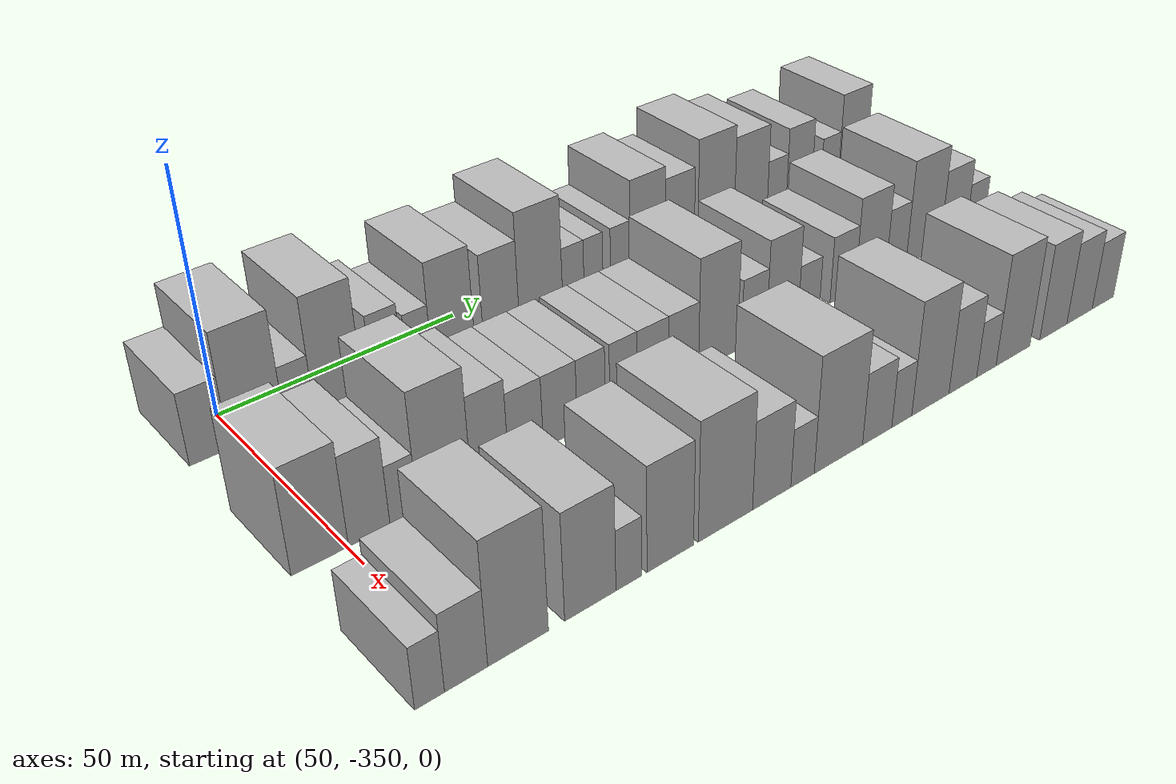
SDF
<sdf version="1.6">
 <world name="default">
  <model name="building_1">
   <static>1</static>
   <pose>50.0000 -356.3182 0 0.000000 0.000000 0.000000</pose>
   <link name="link">
    <pose>0 0 7.50 0 0 0</pose>
    <collision name="collision"><geometry><box><size>20.0000 7.3635 15.0000</size></box></geometry></collision>
    <visual name="visual">
     <cast_shadows>0</cast_shadows>
     <geometry><box><size>20.0000 7.3635 15.0000</size></box></geometry>
     <material>
      <script>
       <uri>model://HANNAS_wall/materials/scripts</uri>
       <uri>model://HANNAS_wall/materials/textures</uri>
       <name>vrc/HANNAS_wall</name>
      </script>
     </material>
    </visual>
   </link>
  </model>
  <model name="building_2">
   <static>1</static>
   <pose>50.0000 -347.3220 0 0.000000 0.000000 0.000000</pose>
   <link name="link">
    <pose>0 0 12.00 0 0 0</pose>
    <collision name="collision"><geometry><box><size>20.0000 10.6289 24.0000</size></box></geometry></collision>
    <visual name="visual">
     <cast_shadows>0</cast_shadows>
     <geometry><box><size>20.0000 10.6289 24.0000</size></box></geometry>
     <material>
      <script>
       <uri>model://HANNAS_wall/materials/scripts</uri>
       <uri>model://HANNAS_wall/materials/textures</uri>
       <name>vrc/HANNAS_wall</name>
      </script>
     </material>
    </visual>
   </link>
  </model>
  <model name="building_3">
   <static>1</static>
   <pose>50.0000 -339.0892 0 0.000000 0.000000 0.000000</pose>
   <link name="link">
    <pose>0 0 6.00 0 0 0</pose>
    <collision name="collision"><geometry><box><size>20.0000 5.8367 12.0000</size></box></geometry></collision>
    <visual name="visual">
     <cast_shadows>0</cast_shadows>
     <geometry><box><size>20.0000 5.8367 12.0000</size></box></geometry>
     <material>
      <script>
       <uri>model://HANNAS_wall/materials/scripts</uri>
       <uri>model://HANNAS_wall/materials/textures</uri>
       <name>vrc/HANNAS_wall</name>
      </script>
     </material>
    </visual>
   </link>
  </model>
  <model name="building_4">
   <static>1</static>
   <pose>50.0000 -331.2127 0 0.000000 0.000000 0.000000</pose>
   <link name="link">
    <pose>0 0 12.00 0 0 0</pose>
    <collision name="collision"><geometry><box><size>20.0000 9.9163 24.0000</size></box></geometry></collision>
    <visual name="visual">
     <cast_shadows>0</cast_shadows>
     <geometry><box><size>20.0000 9.9163 24.0000</size></box></geometry>
     <material>
      <script>
       <uri>model://HANNAS_wall/materials/scripts</uri>
       <uri>model://HANNAS_wall/materials/textures</uri>
       <name>vrc/HANNAS_wall</name>
      </script>
     </material>
    </visual>
   </link>
  </model>
  <model name="building_5">
   <static>1</static>
   <pose>50.0000 -320.9949 0 0.000000 0.000000 0.000000</pose>
   <link name="link">
    <pose>0 0 7.50 0 0 0</pose>
    <collision name="collision"><geometry><box><size>20.0000 6.5192 15.0000</size></box></geometry></collision>
    <visual name="visual">
     <cast_shadows>0</cast_shadows>
     <geometry><box><size>20.0000 6.5192 15.0000</size></box></geometry>
     <material>
      <script>
       <uri>model://HANNAS_wall/materials/scripts</uri>
       <uri>model://HANNAS_wall/materials/textures</uri>
       <name>vrc/HANNAS_wall</name>
      </script>
     </material>
    </visual>
   </link>
  </model>
  <model name="building_6">
   <static>1</static>
   <pose>50.0000 -314.0571 0 0.000000 0.000000 0.000000</pose>
   <link name="link">
    <pose>0 0 6.00 0 0 0</pose>
    <collision name="collision"><geometry><box><size>20.0000 5.3563 12.0000</size></box></geometry></collision>
    <visual name="visual">
     <cast_shadows>0</cast_shadows>
     <geometry><box><size>20.0000 5.3563 12.0000</size></box></geometry>
     <material>
      <script>
       <uri>model://HANNAS_wall/materials/scripts</uri>
       <uri>model://HANNAS_wall/materials/textures</uri>
       <name>vrc/HANNAS_wall</name>
      </script>
     </material>
    </visual>
   </link>
  </model>
  <model name="building_7">
   <static>1</static>
   <pose>50.0000 -306.5330 0 0.000000 0.000000 0.000000</pose>
   <link name="link">
    <pose>0 0 10.50 0 0 0</pose>
    <collision name="collision"><geometry><box><size>20.0000 9.6920 21.0000</size></box></geometry></collision>
    <visual name="visual">
     <cast_shadows>0</cast_shadows>
     <geometry><box><size>20.0000 9.6920 21.0000</size></box></geometry>
     <material>
      <script>
       <uri>model://HANNAS_wall/materials/scripts</uri>
       <uri>model://HANNAS_wall/materials/textures</uri>
       <name>vrc/HANNAS_wall</name>
      </script>
     </material>
    </visual>
   </link>
  </model>
  <model name="building_8">
   <static>1</static>
   <pose>50.0000 -295.4323 0 0.000000 0.000000 0.000000</pose>
   <link name="link">
    <pose>0 0 9.00 0 0 0</pose>
    <collision name="collision"><geometry><box><size>20.0000 8.5095 18.0000</size></box></geometry></collision>
    <visual name="visual">
     <cast_shadows>0</cast_shadows>
     <geometry><box><size>20.0000 8.5095 18.0000</size></box></geometry>
     <material>
      <script>
       <uri>model://HANNAS_wall/materials/scripts</uri>
       <uri>model://HANNAS_wall/materials/textures</uri>
       <name>vrc/HANNAS_wall</name>
      </script>
     </material>
    </visual>
   </link>
  </model>
  <model name="building_9">
   <static>1</static>
   <pose>50.0000 -285.8523 0 0.000000 0.000000 0.000000</pose>
   <link name="link">
    <pose>0 0 12.00 0 0 0</pose>
    <collision name="collision"><geometry><box><size>20.0000 10.6504 24.0000</size></box></geometry></collision>
    <visual name="visual">
     <cast_shadows>0</cast_shadows>
     <geometry><box><size>20.0000 10.6504 24.0000</size></box></geometry>
     <material>
      <script>
       <uri>model://HANNAS_wall/materials/scripts</uri>
       <uri>model://HANNAS_wall/materials/textures</uri>
       <name>vrc/HANNAS_wall</name>
      </script>
     </material>
    </visual>
   </link>
  </model>
  <model name="building_10">
   <static>1</static>
   <pose>50.0000 -277.8127 0 0.000000 0.000000 0.000000</pose>
   <link name="link">
    <pose>0 0 6.00 0 0 0</pose>
    <collision name="collision"><geometry><box><size>20.0000 5.4288 12.0000</size></box></geometry></collision>
    <visual name="visual">
     <cast_shadows>0</cast_shadows>
     <geometry><box><size>20.0000 5.4288 12.0000</size></box></geometry>
     <material>
      <script>
       <uri>model://HANNAS_wall/materials/scripts</uri>
       <uri>model://HANNAS_wall/materials/textures</uri>
       <name>vrc/HANNAS_wall</name>
      </script>
     </material>
    </visual>
   </link>
  </model>
  <model name="building_11">
   <static>1</static>
   <pose>50.0000 -272.6775 0 0.000000 0.000000 0.000000</pose>
   <link name="link">
    <pose>0 0 6.00 0 0 0</pose>
    <collision name="collision"><geometry><box><size>20.0000 4.8417 12.0000</size></box></geometry></collision>
    <visual name="visual">
     <cast_shadows>0</cast_shadows>
     <geometry><box><size>20.0000 4.8417 12.0000</size></box></geometry>
     <material>
      <script>
       <uri>model://HANNAS_wall/materials/scripts</uri>
       <uri>model://HANNAS_wall/materials/textures</uri>
       <name>vrc/HANNAS_wall</name>
      </script>
     </material>
    </visual>
   </link>
  </model>
  <model name="building_12">
   <static>1</static>
   <pose>50.0000 -265.6677 0 0.000000 0.000000 0.000000</pose>
   <link name="link">
    <pose>0 0 6.00 0 0 0</pose>
    <collision name="collision"><geometry><box><size>20.0000 5.1778 12.0000</size></box></geometry></collision>
    <visual name="visual">
     <cast_shadows>0</cast_shadows>
     <geometry><box><size>20.0000 5.1778 12.0000</size></box></geometry>
     <material>
      <script>
       <uri>model://HANNAS_wall/materials/scripts</uri>
       <uri>model://HANNAS_wall/materials/textures</uri>
       <name>vrc/HANNAS_wall</name>
      </script>
     </material>
    </visual>
   </link>
  </model>
  <model name="building_13">
   <static>1</static>
   <pose>50.0000 -258.3570 0 0.000000 0.000000 0.000000</pose>
   <link name="link">
    <pose>0 0 10.50 0 0 0</pose>
    <collision name="collision"><geometry><box><size>20.0000 9.4436 21.0000</size></box></geometry></collision>
    <visual name="visual">
     <cast_shadows>0</cast_shadows>
     <geometry><box><size>20.0000 9.4436 21.0000</size></box></geometry>
     <material>
      <script>
       <uri>model://HANNAS_wall/materials/scripts</uri>
       <uri>model://HANNAS_wall/materials/textures</uri>
       <name>vrc/HANNAS_wall</name>
      </script>
     </material>
    </visual>
   </link>
  </model>
  <model name="building_14">
   <static>1</static>
   <pose>50.0000 -249.5929 0 0.000000 0.000000 0.000000</pose>
   <link name="link">
    <pose>0 0 9.00 0 0 0</pose>
    <collision name="collision"><geometry><box><size>20.0000 8.0846 18.0000</size></box></geometry></collision>
    <visual name="visual">
     <cast_shadows>0</cast_shadows>
     <geometry><box><size>20.0000 8.0846 18.0000</size></box></geometry>
     <material>
      <script>
       <uri>model://HANNAS_wall/materials/scripts</uri>
       <uri>model://HANNAS_wall/materials/textures</uri>
       <name>vrc/HANNAS_wall</name>
      </script>
     </material>
    </visual>
   </link>
  </model>
  <model name="building_15">
   <static>1</static>
   <pose>50.0000 -239.2889 0 0.000000 0.000000 0.000000</pose>
   <link name="link">
    <pose>0 0 12.00 0 0 0</pose>
    <collision name="collision"><geometry><box><size>20.0000 10.5233 24.0000</size></box></geometry></collision>
    <visual name="visual">
     <cast_shadows>0</cast_shadows>
     <geometry><box><size>20.0000 10.5233 24.0000</size></box></geometry>
     <material>
      <script>
       <uri>model://HANNAS_wall/materials/scripts</uri>
       <uri>model://HANNAS_wall/materials/textures</uri>
       <name>vrc/HANNAS_wall</name>
      </script>
     </material>
    </visual>
   </link>
  </model>
  <model name="building_16">
   <static>1</static>
   <pose>50.0000 -229.0714 0 0.000000 0.000000 0.000000</pose>
   <link name="link">
    <pose>0 0 10.50 0 0 0</pose>
    <collision name="collision"><geometry><box><size>20.0000 9.9116 21.0000</size></box></geometry></collision>
    <visual name="visual">
     <cast_shadows>0</cast_shadows>
     <geometry><box><size>20.0000 9.9116 21.0000</size></box></geometry>
     <material>
      <script>
       <uri>model://HANNAS_wall/materials/scripts</uri>
       <uri>model://HANNAS_wall/materials/textures</uri>
       <name>vrc/HANNAS_wall</name>
      </script>
     </material>
    </visual>
   </link>
  </model>
  <model name="building_17">
   <static>1</static>
   <pose>50.0000 -221.1700 0 0.000000 0.000000 0.000000</pose>
   <link name="link">
    <pose>0 0 6.00 0 0 0</pose>
    <collision name="collision"><geometry><box><size>20.0000 5.8912 12.0000</size></box></geometry></collision>
    <visual name="visual">
     <cast_shadows>0</cast_shadows>
     <geometry><box><size>20.0000 5.8912 12.0000</size></box></geometry>
     <material>
      <script>
       <uri>model://HANNAS_wall/materials/scripts</uri>
       <uri>model://HANNAS_wall/materials/textures</uri>
       <name>vrc/HANNAS_wall</name>
      </script>
     </material>
    </visual>
   </link>
  </model>
  <model name="building_18">
   <static>1</static>
   <pose>50.0000 -214.2446 0 0.000000 0.000000 0.000000</pose>
   <link name="link">
    <pose>0 0 9.00 0 0 0</pose>
    <collision name="collision"><geometry><box><size>20.0000 7.9594 18.0000</size></box></geometry></collision>
    <visual name="visual">
     <cast_shadows>0</cast_shadows>
     <geometry><box><size>20.0000 7.9594 18.0000</size></box></geometry>
     <material>
      <script>
       <uri>model://HANNAS_wall/materials/scripts</uri>
       <uri>model://HANNAS_wall/materials/textures</uri>
       <name>vrc/HANNAS_wall</name>
      </script>
     </material>
    </visual>
   </link>
  </model>
  <model name="building_19">
   <static>1</static>
   <pose>50.0000 -204.4203 0 0.000000 0.000000 0.000000</pose>
   <link name="link">
    <pose>0 0 6.00 0 0 0</pose>
    <collision name="collision"><geometry><box><size>20.0000 5.6892 12.0000</size></box></geometry></collision>
    <visual name="visual">
     <cast_shadows>0</cast_shadows>
     <geometry><box><size>20.0000 5.6892 12.0000</size></box></geometry>
     <material>
      <script>
       <uri>model://HANNAS_wall/materials/scripts</uri>
       <uri>model://HANNAS_wall/materials/textures</uri>
       <name>vrc/HANNAS_wall</name>
      </script>
     </material>
    </visual>
   </link>
  </model>
  <model name="building_20">
   <static>1</static>
   <pose>50.0000 -196.9726 0 0.000000 0.000000 0.000000</pose>
   <link name="link">
    <pose>0 0 10.50 0 0 0</pose>
    <collision name="collision"><geometry><box><size>20.0000 9.2061 21.0000</size></box></geometry></collision>
    <visual name="visual">
     <cast_shadows>0</cast_shadows>
     <geometry><box><size>20.0000 9.2061 21.0000</size></box></geometry>
     <material>
      <script>
       <uri>model://HANNAS_wall/materials/scripts</uri>
       <uri>model://HANNAS_wall/materials/textures</uri>
       <name>vrc/HANNAS_wall</name>
      </script>
     </material>
    </visual>
   </link>
  </model>
  <model name="building_81">
   <static>1</static>
   <pose>85.0000 -354.9230 0 0.000000 0.000000 0.000000</pose>
   <link name="link">
    <pose>0 0 10.50 0 0 0</pose>
    <collision name="collision"><geometry><box><size>20.0000 10.1540 21.0000</size></box></geometry></collision>
    <visual name="visual">
     <cast_shadows>0</cast_shadows>
     <geometry><box><size>20.0000 10.1540 21.0000</size></box></geometry>
     <material>
      <script>
       <uri>model://HANNAS_wall/materials/scripts</uri>
       <uri>model://HANNAS_wall/materials/textures</uri>
       <name>vrc/HANNAS_wall</name>
      </script>
     </material>
    </visual>
   </link>
  </model>
  <model name="building_82">
   <static>1</static>
   <pose>85.0000 -346.0212 0 0.000000 0.000000 0.000000</pose>
   <link name="link">
    <pose>0 0 9.00 0 0 0</pose>
    <collision name="collision"><geometry><box><size>20.0000 7.6495 18.0000</size></box></geometry></collision>
    <visual name="visual">
     <cast_shadows>0</cast_shadows>
     <geometry><box><size>20.0000 7.6495 18.0000</size></box></geometry>
     <material>
      <script>
       <uri>model://HANNAS_wall/materials/scripts</uri>
       <uri>model://HANNAS_wall/materials/textures</uri>
       <name>vrc/HANNAS_wall</name>
      </script>
     </material>
    </visual>
   </link>
  </model>
  <model name="building_83">
   <static>1</static>
   <pose>85.0000 -339.5776 0 0.000000 0.000000 0.000000</pose>
   <link name="link">
    <pose>0 0 6.00 0 0 0</pose>
    <collision name="collision"><geometry><box><size>20.0000 5.2378 12.0000</size></box></geometry></collision>
    <visual name="visual">
     <cast_shadows>0</cast_shadows>
     <geometry><box><size>20.0000 5.2378 12.0000</size></box></geometry>
     <material>
      <script>
       <uri>model://HANNAS_wall/materials/scripts</uri>
       <uri>model://HANNAS_wall/materials/textures</uri>
       <name>vrc/HANNAS_wall</name>
      </script>
     </material>
    </visual>
   </link>
  </model>
  <model name="building_84">
   <static>1</static>
   <pose>85.0000 -331.7009 0 0.000000 0.000000 0.000000</pose>
   <link name="link">
    <pose>0 0 12.00 0 0 0</pose>
    <collision name="collision"><geometry><box><size>20.0000 10.5156 24.0000</size></box></geometry></collision>
    <visual name="visual">
     <cast_shadows>0</cast_shadows>
     <geometry><box><size>20.0000 10.5156 24.0000</size></box></geometry>
     <material>
      <script>
       <uri>model://HANNAS_wall/materials/scripts</uri>
       <uri>model://HANNAS_wall/materials/textures</uri>
       <name>vrc/HANNAS_wall</name>
      </script>
     </material>
    </visual>
   </link>
  </model>
  <model name="building_85">
   <static>1</static>
   <pose>85.0000 -322.6389 0 0.000000 0.000000 0.000000</pose>
   <link name="link">
    <pose>0 0 9.00 0 0 0</pose>
    <collision name="collision"><geometry><box><size>20.0000 7.6083 18.0000</size></box></geometry></collision>
    <visual name="visual">
     <cast_shadows>0</cast_shadows>
     <geometry><box><size>20.0000 7.6083 18.0000</size></box></geometry>
     <material>
      <script>
       <uri>model://HANNAS_wall/materials/scripts</uri>
       <uri>model://HANNAS_wall/materials/textures</uri>
       <name>vrc/HANNAS_wall</name>
      </script>
     </material>
    </visual>
   </link>
  </model>
  <model name="building_86">
   <static>1</static>
   <pose>85.0000 -315.1544 0 0.000000 0.000000 0.000000</pose>
   <link name="link">
    <pose>0 0 7.50 0 0 0</pose>
    <collision name="collision"><geometry><box><size>20.0000 7.3609 15.0000</size></box></geometry></collision>
    <visual name="visual">
     <cast_shadows>0</cast_shadows>
     <geometry><box><size>20.0000 7.3609 15.0000</size></box></geometry>
     <material>
      <script>
       <uri>model://HANNAS_wall/materials/scripts</uri>
       <uri>model://HANNAS_wall/materials/textures</uri>
       <name>vrc/HANNAS_wall</name>
      </script>
     </material>
    </visual>
   </link>
  </model>
  <model name="building_87">
   <static>1</static>
   <pose>85.0000 -307.7761 0 0.000000 0.000000 0.000000</pose>
   <link name="link">
    <pose>0 0 7.50 0 0 0</pose>
    <collision name="collision"><geometry><box><size>20.0000 7.3957 15.0000</size></box></geometry></collision>
    <visual name="visual">
     <cast_shadows>0</cast_shadows>
     <geometry><box><size>20.0000 7.3957 15.0000</size></box></geometry>
     <material>
      <script>
       <uri>model://HANNAS_wall/materials/scripts</uri>
       <uri>model://HANNAS_wall/materials/textures</uri>
       <name>vrc/HANNAS_wall</name>
      </script>
     </material>
    </visual>
   </link>
  </model>
  <model name="building_88">
   <static>1</static>
   <pose>85.0000 -300.9057 0 0.000000 0.000000 0.000000</pose>
   <link name="link">
    <pose>0 0 7.50 0 0 0</pose>
    <collision name="collision"><geometry><box><size>20.0000 6.3449 15.0000</size></box></geometry></collision>
    <visual name="visual">
     <cast_shadows>0</cast_shadows>
     <geometry><box><size>20.0000 6.3449 15.0000</size></box></geometry>
     <material>
      <script>
       <uri>model://HANNAS_wall/materials/scripts</uri>
       <uri>model://HANNAS_wall/materials/textures</uri>
       <name>vrc/HANNAS_wall</name>
      </script>
     </material>
    </visual>
   </link>
  </model>
  <model name="building_89">
   <static>1</static>
   <pose>85.0000 -293.5814 0 0.000000 0.000000 0.000000</pose>
   <link name="link">
    <pose>0 0 7.50 0 0 0</pose>
    <collision name="collision"><geometry><box><size>20.0000 6.3038 15.0000</size></box></geometry></collision>
    <visual name="visual">
     <cast_shadows>0</cast_shadows>
     <geometry><box><size>20.0000 6.3038 15.0000</size></box></geometry>
     <material>
      <script>
       <uri>model://HANNAS_wall/materials/scripts</uri>
       <uri>model://HANNAS_wall/materials/textures</uri>
       <name>vrc/HANNAS_wall</name>
      </script>
     </material>
    </visual>
   </link>
  </model>
  <model name="building_90">
   <static>1</static>
   <pose>85.0000 -286.7351 0 0.000000 0.000000 0.000000</pose>
   <link name="link">
    <pose>0 0 7.50 0 0 0</pose>
    <collision name="collision"><geometry><box><size>20.0000 7.3887 15.0000</size></box></geometry></collision>
    <visual name="visual">
     <cast_shadows>0</cast_shadows>
     <geometry><box><size>20.0000 7.3887 15.0000</size></box></geometry>
     <material>
      <script>
       <uri>model://HANNAS_wall/materials/scripts</uri>
       <uri>model://HANNAS_wall/materials/textures</uri>
       <name>vrc/HANNAS_wall</name>
      </script>
     </material>
    </visual>
   </link>
  </model>
  <model name="building_91">
   <static>1</static>
   <pose>85.0000 -279.3662 0 0.000000 0.000000 0.000000</pose>
   <link name="link">
    <pose>0 0 7.50 0 0 0</pose>
    <collision name="collision"><geometry><box><size>20.0000 7.3492 15.0000</size></box></geometry></collision>
    <visual name="visual">
     <cast_shadows>0</cast_shadows>
     <geometry><box><size>20.0000 7.3492 15.0000</size></box></geometry>
     <material>
      <script>
       <uri>model://HANNAS_wall/materials/scripts</uri>
       <uri>model://HANNAS_wall/materials/textures</uri>
       <name>vrc/HANNAS_wall</name>
      </script>
     </material>
    </visual>
   </link>
  </model>
  <model name="building_92">
   <static>1</static>
   <pose>85.0000 -270.7363 0 0.000000 0.000000 0.000000</pose>
   <link name="link">
    <pose>0 0 12.00 0 0 0</pose>
    <collision name="collision"><geometry><box><size>20.0000 9.9105 24.0000</size></box></geometry></collision>
    <visual name="visual">
     <cast_shadows>0</cast_shadows>
     <geometry><box><size>20.0000 9.9105 24.0000</size></box></geometry>
     <material>
      <script>
       <uri>model://HANNAS_wall/materials/scripts</uri>
       <uri>model://HANNAS_wall/materials/textures</uri>
       <name>vrc/HANNAS_wall</name>
      </script>
     </material>
    </visual>
   </link>
  </model>
  <model name="building_93">
   <static>1</static>
   <pose>85.0000 -261.4802 0 0.000000 0.000000 0.000000</pose>
   <link name="link">
    <pose>0 0 7.50 0 0 0</pose>
    <collision name="collision"><geometry><box><size>20.0000 6.6018 15.0000</size></box></geometry></collision>
    <visual name="visual">
     <cast_shadows>0</cast_shadows>
     <geometry><box><size>20.0000 6.6018 15.0000</size></box></geometry>
     <material>
      <script>
       <uri>model://HANNAS_wall/materials/scripts</uri>
       <uri>model://HANNAS_wall/materials/textures</uri>
       <name>vrc/HANNAS_wall</name>
      </script>
     </material>
    </visual>
   </link>
  </model>
  <model name="building_94">
   <static>1</static>
   <pose>85.0000 -253.8972 0 0.000000 0.000000 0.000000</pose>
   <link name="link">
    <pose>0 0 10.50 0 0 0</pose>
    <collision name="collision"><geometry><box><size>20.0000 8.5642 21.0000</size></box></geometry></collision>
    <visual name="visual">
     <cast_shadows>0</cast_shadows>
     <geometry><box><size>20.0000 8.5642 21.0000</size></box></geometry>
     <material>
      <script>
       <uri>model://HANNAS_wall/materials/scripts</uri>
       <uri>model://HANNAS_wall/materials/textures</uri>
       <name>vrc/HANNAS_wall</name>
      </script>
     </material>
    </visual>
   </link>
  </model>
  <model name="building_95">
   <static>1</static>
   <pose>85.0000 -246.6597 0 0.000000 0.000000 0.000000</pose>
   <link name="link">
    <pose>0 0 6.00 0 0 0</pose>
    <collision name="collision"><geometry><box><size>20.0000 5.9108 12.0000</size></box></geometry></collision>
    <visual name="visual">
     <cast_shadows>0</cast_shadows>
     <geometry><box><size>20.0000 5.9108 12.0000</size></box></geometry>
     <material>
      <script>
       <uri>model://HANNAS_wall/materials/scripts</uri>
       <uri>model://HANNAS_wall/materials/textures</uri>
       <name>vrc/HANNAS_wall</name>
      </script>
     </material>
    </visual>
   </link>
  </model>
  <model name="building_96">
   <static>1</static>
   <pose>85.0000 -237.0881 0 0.000000 0.000000 0.000000</pose>
   <link name="link">
    <pose>0 0 7.50 0 0 0</pose>
    <collision name="collision"><geometry><box><size>20.0000 7.2323 15.0000</size></box></geometry></collision>
    <visual name="visual">
     <cast_shadows>0</cast_shadows>
     <geometry><box><size>20.0000 7.2323 15.0000</size></box></geometry>
     <material>
      <script>
       <uri>model://HANNAS_wall/materials/scripts</uri>
       <uri>model://HANNAS_wall/materials/textures</uri>
       <name>vrc/HANNAS_wall</name>
      </script>
     </material>
    </visual>
   </link>
  </model>
  <model name="building_97">
   <static>1</static>
   <pose>85.0000 -228.9079 0 0.000000 0.000000 0.000000</pose>
   <link name="link">
    <pose>0 0 10.50 0 0 0</pose>
    <collision name="collision"><geometry><box><size>20.0000 9.1282 21.0000</size></box></geometry></collision>
    <visual name="visual">
     <cast_shadows>0</cast_shadows>
     <geometry><box><size>20.0000 9.1282 21.0000</size></box></geometry>
     <material>
      <script>
       <uri>model://HANNAS_wall/materials/scripts</uri>
       <uri>model://HANNAS_wall/materials/textures</uri>
       <name>vrc/HANNAS_wall</name>
      </script>
     </material>
    </visual>
   </link>
  </model>
  <model name="building_98">
   <static>1</static>
   <pose>85.0000 -221.2618 0 0.000000 0.000000 0.000000</pose>
   <link name="link">
    <pose>0 0 7.50 0 0 0</pose>
    <collision name="collision"><geometry><box><size>20.0000 6.1638 15.0000</size></box></geometry></collision>
    <visual name="visual">
     <cast_shadows>0</cast_shadows>
     <geometry><box><size>20.0000 6.1638 15.0000</size></box></geometry>
     <material>
      <script>
       <uri>model://HANNAS_wall/materials/scripts</uri>
       <uri>model://HANNAS_wall/materials/textures</uri>
       <name>vrc/HANNAS_wall</name>
      </script>
     </material>
    </visual>
   </link>
  </model>
  <model name="building_99">
   <static>1</static>
   <pose>85.0000 -212.8342 0 0.000000 0.000000 0.000000</pose>
   <link name="link">
    <pose>0 0 12.00 0 0 0</pose>
    <collision name="collision"><geometry><box><size>20.0000 10.6914 24.0000</size></box></geometry></collision>
    <visual name="visual">
     <cast_shadows>0</cast_shadows>
     <geometry><box><size>20.0000 10.6914 24.0000</size></box></geometry>
     <material>
      <script>
       <uri>model://HANNAS_wall/materials/scripts</uri>
       <uri>model://HANNAS_wall/materials/textures</uri>
       <name>vrc/HANNAS_wall</name>
      </script>
     </material>
    </visual>
   </link>
  </model>
  <model name="building_100">
   <static>1</static>
   <pose>85.0000 -203.2504 0 0.000000 0.000000 0.000000</pose>
   <link name="link">
    <pose>0 0 9.00 0 0 0</pose>
    <collision name="collision"><geometry><box><size>20.0000 8.4762 18.0000</size></box></geometry></collision>
    <visual name="visual">
     <cast_shadows>0</cast_shadows>
     <geometry><box><size>20.0000 8.4762 18.0000</size></box></geometry>
     <material>
      <script>
       <uri>model://HANNAS_wall/materials/scripts</uri>
       <uri>model://HANNAS_wall/materials/textures</uri>
       <name>vrc/HANNAS_wall</name>
      </script>
     </material>
    </visual>
   </link>
  </model>
  <model name="building_101">
   <static>1</static>
   <pose>85.0000 -196.0140 0 0.000000 0.000000 0.000000</pose>
   <link name="link">
    <pose>0 0 6.00 0 0 0</pose>
    <collision name="collision"><geometry><box><size>20.0000 5.9967 12.0000</size></box></geometry></collision>
    <visual name="visual">
     <cast_shadows>0</cast_shadows>
     <geometry><box><size>20.0000 5.9967 12.0000</size></box></geometry>
     <material>
      <script>
       <uri>model://HANNAS_wall/materials/scripts</uri>
       <uri>model://HANNAS_wall/materials/textures</uri>
       <name>vrc/HANNAS_wall</name>
      </script>
     </material>
    </visual>
   </link>
  </model>
  <model name="building_162">
   <static>1</static>
   <pose>120.0000 -357.5133 0 0.000000 0.000000 0.000000</pose>
   <link name="link">
    <pose>0 0 6.00 0 0 0</pose>
    <collision name="collision"><geometry><box><size>20.0000 4.9734 12.0000</size></box></geometry></collision>
    <visual name="visual">
     <cast_shadows>0</cast_shadows>
     <geometry><box><size>20.0000 4.9734 12.0000</size></box></geometry>
     <material>
      <script>
       <uri>model://HANNAS_wall/materials/scripts</uri>
       <uri>model://HANNAS_wall/materials/textures</uri>
       <name>vrc/HANNAS_wall</name>
      </script>
     </material>
    </visual>
   </link>
  </model>
  <model name="building_163">
   <static>1</static>
   <pose>120.0000 -351.3323 0 0.000000 0.000000 0.000000</pose>
   <link name="link">
    <pose>0 0 7.50 0 0 0</pose>
    <collision name="collision"><geometry><box><size>20.0000 7.3888 15.0000</size></box></geometry></collision>
    <visual name="visual">
     <cast_shadows>0</cast_shadows>
     <geometry><box><size>20.0000 7.3888 15.0000</size></box></geometry>
     <material>
      <script>
       <uri>model://HANNAS_wall/materials/scripts</uri>
       <uri>model://HANNAS_wall/materials/textures</uri>
       <name>vrc/HANNAS_wall</name>
      </script>
     </material>
    </visual>
   </link>
  </model>
  <model name="building_164">
   <static>1</static>
   <pose>120.0000 -342.1987 0 0.000000 0.000000 0.000000</pose>
   <link name="link">
    <pose>0 0 12.00 0 0 0</pose>
    <collision name="collision"><geometry><box><size>20.0000 10.8783 24.0000</size></box></geometry></collision>
    <visual name="visual">
     <cast_shadows>0</cast_shadows>
     <geometry><box><size>20.0000 10.8783 24.0000</size></box></geometry>
     <material>
      <script>
       <uri>model://HANNAS_wall/materials/scripts</uri>
       <uri>model://HANNAS_wall/materials/textures</uri>
       <name>vrc/HANNAS_wall</name>
      </script>
     </material>
    </visual>
   </link>
  </model>
  <model name="building_165">
   <static>1</static>
   <pose>120.0000 -328.8432 0 0.000000 0.000000 0.000000</pose>
   <link name="link">
    <pose>0 0 10.50 0 0 0</pose>
    <collision name="collision"><geometry><box><size>20.0000 9.8327 21.0000</size></box></geometry></collision>
    <visual name="visual">
     <cast_shadows>0</cast_shadows>
     <geometry><box><size>20.0000 9.8327 21.0000</size></box></geometry>
     <material>
      <script>
       <uri>model://HANNAS_wall/materials/scripts</uri>
       <uri>model://HANNAS_wall/materials/textures</uri>
       <name>vrc/HANNAS_wall</name>
      </script>
     </material>
    </visual>
   </link>
  </model>
  <model name="building_166">
   <static>1</static>
   <pose>120.0000 -321.3410 0 0.000000 0.000000 0.000000</pose>
   <link name="link">
    <pose>0 0 6.00 0 0 0</pose>
    <collision name="collision"><geometry><box><size>20.0000 5.1718 12.0000</size></box></geometry></collision>
    <visual name="visual">
     <cast_shadows>0</cast_shadows>
     <geometry><box><size>20.0000 5.1718 12.0000</size></box></geometry>
     <material>
      <script>
       <uri>model://HANNAS_wall/materials/scripts</uri>
       <uri>model://HANNAS_wall/materials/textures</uri>
       <name>vrc/HANNAS_wall</name>
      </script>
     </material>
    </visual>
   </link>
  </model>
  <model name="building_167">
   <static>1</static>
   <pose>120.0000 -312.9410 0 0.000000 0.000000 0.000000</pose>
   <link name="link">
    <pose>0 0 10.50 0 0 0</pose>
    <collision name="collision"><geometry><box><size>20.0000 9.6281 21.0000</size></box></geometry></collision>
    <visual name="visual">
     <cast_shadows>0</cast_shadows>
     <geometry><box><size>20.0000 9.6281 21.0000</size></box></geometry>
     <material>
      <script>
       <uri>model://HANNAS_wall/materials/scripts</uri>
       <uri>model://HANNAS_wall/materials/textures</uri>
       <name>vrc/HANNAS_wall</name>
      </script>
     </material>
    </visual>
   </link>
  </model>
  <model name="building_168">
   <static>1</static>
   <pose>120.0000 -301.1941 0 0.000000 0.000000 0.000000</pose>
   <link name="link">
    <pose>0 0 12.00 0 0 0</pose>
    <collision name="collision"><geometry><box><size>20.0000 11.8657 24.0000</size></box></geometry></collision>
    <visual name="visual">
     <cast_shadows>0</cast_shadows>
     <geometry><box><size>20.0000 11.8657 24.0000</size></box></geometry>
     <material>
      <script>
       <uri>model://HANNAS_wall/materials/scripts</uri>
       <uri>model://HANNAS_wall/materials/textures</uri>
       <name>vrc/HANNAS_wall</name>
      </script>
     </material>
    </visual>
   </link>
  </model>
  <model name="building_169">
   <static>1</static>
   <pose>120.0000 -290.8749 0 0.000000 0.000000 0.000000</pose>
   <link name="link">
    <pose>0 0 9.00 0 0 0</pose>
    <collision name="collision"><geometry><box><size>20.0000 8.7728 18.0000</size></box></geometry></collision>
    <visual name="visual">
     <cast_shadows>0</cast_shadows>
     <geometry><box><size>20.0000 8.7728 18.0000</size></box></geometry>
     <material>
      <script>
       <uri>model://HANNAS_wall/materials/scripts</uri>
       <uri>model://HANNAS_wall/materials/textures</uri>
       <name>vrc/HANNAS_wall</name>
      </script>
     </material>
    </visual>
   </link>
  </model>
  <model name="building_170">
   <static>1</static>
   <pose>120.0000 -283.7171 0 0.000000 0.000000 0.000000</pose>
   <link name="link">
    <pose>0 0 6.00 0 0 0</pose>
    <collision name="collision"><geometry><box><size>20.0000 5.5427 12.0000</size></box></geometry></collision>
    <visual name="visual">
     <cast_shadows>0</cast_shadows>
     <geometry><box><size>20.0000 5.5427 12.0000</size></box></geometry>
     <material>
      <script>
       <uri>model://HANNAS_wall/materials/scripts</uri>
       <uri>model://HANNAS_wall/materials/textures</uri>
       <name>vrc/HANNAS_wall</name>
      </script>
     </material>
    </visual>
   </link>
  </model>
  <model name="building_171">
   <static>1</static>
   <pose>120.0000 -275.0122 0 0.000000 0.000000 0.000000</pose>
   <link name="link">
    <pose>0 0 12.00 0 0 0</pose>
    <collision name="collision"><geometry><box><size>20.0000 11.8672 24.0000</size></box></geometry></collision>
    <visual name="visual">
     <cast_shadows>0</cast_shadows>
     <geometry><box><size>20.0000 11.8672 24.0000</size></box></geometry>
     <material>
      <script>
       <uri>model://HANNAS_wall/materials/scripts</uri>
       <uri>model://HANNAS_wall/materials/textures</uri>
       <name>vrc/HANNAS_wall</name>
      </script>
     </material>
    </visual>
   </link>
  </model>
  <model name="building_172">
   <static>1</static>
   <pose>120.0000 -265.3386 0 0.000000 0.000000 0.000000</pose>
   <link name="link">
    <pose>0 0 7.50 0 0 0</pose>
    <collision name="collision"><geometry><box><size>20.0000 7.4801 15.0000</size></box></geometry></collision>
    <visual name="visual">
     <cast_shadows>0</cast_shadows>
     <geometry><box><size>20.0000 7.4801 15.0000</size></box></geometry>
     <material>
      <script>
       <uri>model://HANNAS_wall/materials/scripts</uri>
       <uri>model://HANNAS_wall/materials/textures</uri>
       <name>vrc/HANNAS_wall</name>
      </script>
     </material>
    </visual>
   </link>
  </model>
  <model name="building_173">
   <static>1</static>
   <pose>120.0000 -258.9674 0 0.000000 0.000000 0.000000</pose>
   <link name="link">
    <pose>0 0 6.00 0 0 0</pose>
    <collision name="collision"><geometry><box><size>20.0000 5.2622 12.0000</size></box></geometry></collision>
    <visual name="visual">
     <cast_shadows>0</cast_shadows>
     <geometry><box><size>20.0000 5.2622 12.0000</size></box></geometry>
     <material>
      <script>
       <uri>model://HANNAS_wall/materials/scripts</uri>
       <uri>model://HANNAS_wall/materials/textures</uri>
       <name>vrc/HANNAS_wall</name>
      </script>
     </material>
    </visual>
   </link>
  </model>
  <model name="building_174">
   <static>1</static>
   <pose>120.0000 -251.2833 0 0.000000 0.000000 0.000000</pose>
   <link name="link">
    <pose>0 0 12.00 0 0 0</pose>
    <collision name="collision"><geometry><box><size>20.0000 10.1061 24.0000</size></box></geometry></collision>
    <visual name="visual">
     <cast_shadows>0</cast_shadows>
     <geometry><box><size>20.0000 10.1061 24.0000</size></box></geometry>
     <material>
      <script>
       <uri>model://HANNAS_wall/materials/scripts</uri>
       <uri>model://HANNAS_wall/materials/textures</uri>
       <name>vrc/HANNAS_wall</name>
      </script>
     </material>
    </visual>
   </link>
  </model>
  <model name="building_175">
   <static>1</static>
   <pose>120.0000 -242.3121 0 0.000000 0.000000 0.000000</pose>
   <link name="link">
    <pose>0 0 9.00 0 0 0</pose>
    <collision name="collision"><geometry><box><size>20.0000 7.8362 18.0000</size></box></geometry></collision>
    <visual name="visual">
     <cast_shadows>0</cast_shadows>
     <geometry><box><size>20.0000 7.8362 18.0000</size></box></geometry>
     <material>
      <script>
       <uri>model://HANNAS_wall/materials/scripts</uri>
       <uri>model://HANNAS_wall/materials/textures</uri>
       <name>vrc/HANNAS_wall</name>
      </script>
     </material>
    </visual>
   </link>
  </model>
  <model name="building_176">
   <static>1</static>
   <pose>120.0000 -235.5884 0 0.000000 0.000000 0.000000</pose>
   <link name="link">
    <pose>0 0 6.00 0 0 0</pose>
    <collision name="collision"><geometry><box><size>20.0000 5.6113 12.0000</size></box></geometry></collision>
    <visual name="visual">
     <cast_shadows>0</cast_shadows>
     <geometry><box><size>20.0000 5.6113 12.0000</size></box></geometry>
     <material>
      <script>
       <uri>model://HANNAS_wall/materials/scripts</uri>
       <uri>model://HANNAS_wall/materials/textures</uri>
       <name>vrc/HANNAS_wall</name>
      </script>
     </material>
    </visual>
   </link>
  </model>
  <model name="building_177">
   <static>1</static>
   <pose>120.0000 -227.7119 0 0.000000 0.000000 0.000000</pose>
   <link name="link">
    <pose>0 0 12.00 0 0 0</pose>
    <collision name="collision"><geometry><box><size>20.0000 10.1416 24.0000</size></box></geometry></collision>
    <visual name="visual">
     <cast_shadows>0</cast_shadows>
     <geometry><box><size>20.0000 10.1416 24.0000</size></box></geometry>
     <material>
      <script>
       <uri>model://HANNAS_wall/materials/scripts</uri>
       <uri>model://HANNAS_wall/materials/textures</uri>
       <name>vrc/HANNAS_wall</name>
      </script>
     </material>
    </visual>
   </link>
  </model>
  <model name="building_178">
   <static>1</static>
   <pose>120.0000 -215.3893 0 0.000000 0.000000 0.000000</pose>
   <link name="link">
    <pose>0 0 10.50 0 0 0</pose>
    <collision name="collision"><geometry><box><size>20.0000 8.5036 21.0000</size></box></geometry></collision>
    <visual name="visual">
     <cast_shadows>0</cast_shadows>
     <geometry><box><size>20.0000 8.5036 21.0000</size></box></geometry>
     <material>
      <script>
       <uri>model://HANNAS_wall/materials/scripts</uri>
       <uri>model://HANNAS_wall/materials/textures</uri>
       <name>vrc/HANNAS_wall</name>
      </script>
     </material>
    </visual>
   </link>
  </model>
  <model name="building_179">
   <static>1</static>
   <pose>120.0000 -207.0401 0 0.000000 0.000000 0.000000</pose>
   <link name="link">
    <pose>0 0 9.00 0 0 0</pose>
    <collision name="collision"><geometry><box><size>20.0000 8.1948 18.0000</size></box></geometry></collision>
    <visual name="visual">
     <cast_shadows>0</cast_shadows>
     <geometry><box><size>20.0000 8.1948 18.0000</size></box></geometry>
     <material>
      <script>
       <uri>model://HANNAS_wall/materials/scripts</uri>
       <uri>model://HANNAS_wall/materials/textures</uri>
       <name>vrc/HANNAS_wall</name>
      </script>
     </material>
    </visual>
   </link>
  </model>
  <model name="building_180">
   <static>1</static>
   <pose>120.0000 -199.4063 0 0.000000 0.000000 0.000000</pose>
   <link name="link">
    <pose>0 0 7.50 0 0 0</pose>
    <collision name="collision"><geometry><box><size>20.0000 7.0728 15.0000</size></box></geometry></collision>
    <visual name="visual">
     <cast_shadows>0</cast_shadows>
     <geometry><box><size>20.0000 7.0728 15.0000</size></box></geometry>
     <material>
      <script>
       <uri>model://HANNAS_wall/materials/scripts</uri>
       <uri>model://HANNAS_wall/materials/textures</uri>
       <name>vrc/HANNAS_wall</name>
      </script>
     </material>
    </visual>
   </link>
  </model>
 </world>
</sdf>
